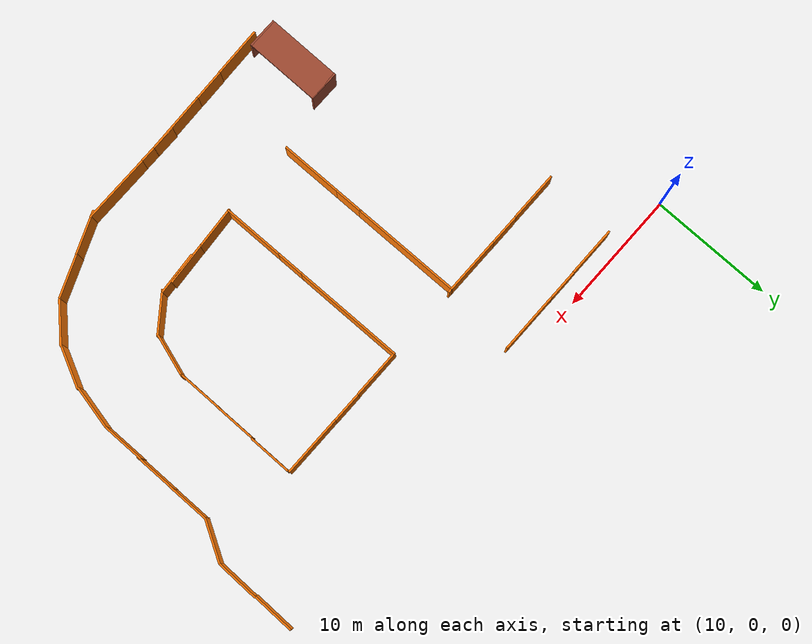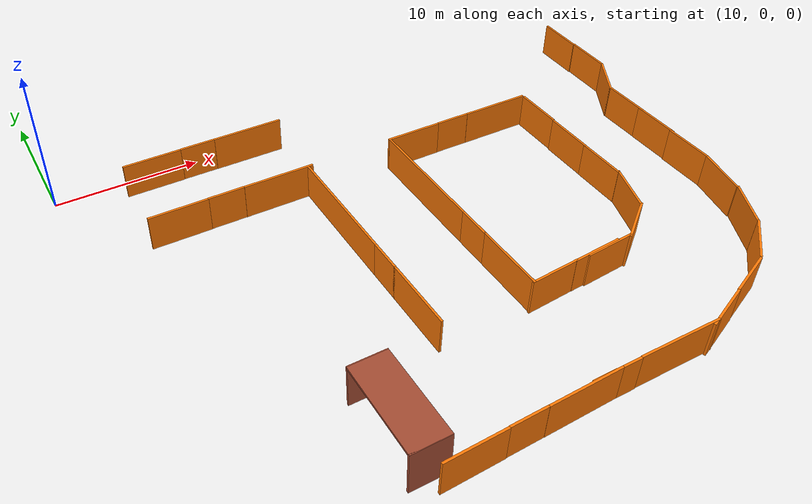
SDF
<sdf version="1.7">
 <world name="cimen_zemin_dunyasi">
  <model name="barier3_clone_clone_clone_clone_0_clone_clone">
   <link name="Wall_5">
    <pose>-1.25417 -2.31114 0 0 -0 0</pose>
    <inertial>
     <inertia><ixx>0</ixx><ixy>0</ixy><ixz>0</ixz><iyy>0</iyy><iyz>0</iyz><izz>0</izz></inertia>
     <mass>0</mass>
    </inertial>
    <visual name="Wall_5_Visual">
     <pose>0 0 1.25 0 -0 0</pose>
     <geometry><box><size>4.04839 0.15 2.5</size></box></geometry>
     <material>
      <script><uri>file://media/materials/scripts/gazebo.material</uri><name>Gazebo/Grey</name></script>
      <ambient>0.996078 0.47451 0.0196078 1</ambient>
      <shader type="pixel"/>
     </material>
     <meta><layer>0</layer></meta>
    </visual>
    <collision name="Wall_5_Collision">
     <pose>0 0 1.25 0 -0 0</pose>
     <geometry><box><size>4.04839 0.15 2.5</size></box></geometry>
     <surface>
      <friction>
       <ode><mu>1</mu><mu2>1</mu2><fdir1>0 0 0</fdir1><slip1>0</slip1><slip2>0</slip2></ode>
       <torsional>
        <coefficient>1</coefficient>
        <patch_radius>0</patch_radius>
        <surface_radius>0</surface_radius>
        <use_patch_radius>1</use_patch_radius>
        <ode><slip>0</slip></ode>
       </torsional>
      </friction>
      <bounce><restitution_coefficient>0</restitution_coefficient><threshold>1e+06</threshold></bounce>
      <contact>
       <collide_without_contact>0</collide_without_contact>
       <collide_without_contact_bitmask>1</collide_without_contact_bitmask>
       <collide_bitmask>1</collide_bitmask>
       <ode>
        <soft_cfm>0</soft_cfm>
        <soft_erp>0.2</soft_erp>
        <kp>1e+13</kp>
        <kd>1</kd>
        <max_vel>0.01</max_vel>
        <min_depth>0</min_depth>
       </ode>
       <bullet>
        <split_impulse>1</split_impulse>
        <split_impulse_penetration_threshold>-0.01</split_impulse_penetration_threshold>
        <soft_cfm>0</soft_cfm>
        <soft_erp>0.2</soft_erp>
        <kp>1e+13</kp>
        <kd>1</kd>
       </bullet>
      </contact>
     </surface>
    </collision>
   </link>
   <link name="Wall_7">
    <pose>2 -2.29057 0 0 -0 0</pose>
    <visual name="Wall_7_Visual">
     <pose>0 0 1.25 0 -0 0</pose>
     <geometry><box><size>2.5 0.15 2.5</size></box></geometry>
     <material>
      <script><uri>file://media/materials/scripts/gazebo.material</uri><name>Gazebo/Grey</name></script>
      <ambient>0.996078 0.47451 0.0196078 1</ambient>
      <shader type="pixel"/>
     </material>
     <meta><layer>0</layer></meta>
    </visual>
    <collision name="Wall_7_Collision">
     <pose>0 0 1.25 0 -0 0</pose>
     <geometry><box><size>2.5 0.15 2.5</size></box></geometry>
     <surface>
      <friction>
       <ode><mu>1</mu><mu2>1</mu2><fdir1>0 0 0</fdir1><slip1>0</slip1><slip2>0</slip2></ode>
       <torsional>
        <coefficient>1</coefficient>
        <patch_radius>0</patch_radius>
        <surface_radius>0</surface_radius>
        <use_patch_radius>1</use_patch_radius>
        <ode><slip>0</slip></ode>
       </torsional>
      </friction>
      <bounce><restitution_coefficient>0</restitution_coefficient><threshold>1e+06</threshold></bounce>
      <contact>
       <collide_without_contact>0</collide_without_contact>
       <collide_without_contact_bitmask>1</collide_without_contact_bitmask>
       <collide_bitmask>1</collide_bitmask>
       <ode>
        <soft_cfm>0</soft_cfm>
        <soft_erp>0.2</soft_erp>
        <kp>1e+13</kp>
        <kd>1</kd>
        <max_vel>0.01</max_vel>
        <min_depth>0</min_depth>
       </ode>
       <bullet>
        <split_impulse>1</split_impulse>
        <split_impulse_penetration_threshold>-0.01</split_impulse_penetration_threshold>
        <soft_cfm>0</soft_cfm>
        <soft_erp>0.2</soft_erp>
        <kp>1e+13</kp>
        <kd>1</kd>
       </bullet>
      </contact>
     </surface>
    </collision>
   </link>
   <link name="Wall_9">
    <pose>5.71906 -2.30051 0 0 -0 0</pose>
    <inertial>
     <inertia><ixx>0</ixx><ixy>0</ixy><ixz>0</ixz><iyy>0</iyy><iyz>0</iyz><izz>0</izz></inertia>
     <mass>0</mass>
    </inertial>
    <visual name="Wall_9_Visual">
     <pose>0 0 1.25 0 -0 0</pose>
     <geometry><box><size>4.97607 0.15 2.5</size></box></geometry>
     <material>
      <script><uri>file://media/materials/scripts/gazebo.material</uri><name>Gazebo/Grey</name></script>
      <ambient>0.996078 0.47451 0.0196078 1</ambient>
      <shader type="pixel"/>
     </material>
     <meta><layer>0</layer></meta>
    </visual>
    <collision name="Wall_9_Collision">
     <pose>0 0 1.25 0 -0 0</pose>
     <geometry><box><size>4.97607 0.15 2.5</size></box></geometry>
     <surface>
      <friction>
       <ode><mu>1</mu><mu2>1</mu2><fdir1>0 0 0</fdir1><slip1>0</slip1><slip2>0</slip2></ode>
       <torsional>
        <coefficient>1</coefficient>
        <patch_radius>0</patch_radius>
        <surface_radius>0</surface_radius>
        <use_patch_radius>1</use_patch_radius>
        <ode><slip>0</slip></ode>
       </torsional>
      </friction>
      <bounce><restitution_coefficient>0</restitution_coefficient><threshold>1e+06</threshold></bounce>
      <contact>
       <collide_without_contact>0</collide_without_contact>
       <collide_without_contact_bitmask>1</collide_without_contact_bitmask>
       <collide_bitmask>1</collide_bitmask>
       <ode>
        <soft_cfm>0</soft_cfm>
        <soft_erp>0.2</soft_erp>
        <kp>1e+13</kp>
        <kd>1</kd>
        <max_vel>0.01</max_vel>
        <min_depth>0</min_depth>
       </ode>
       <bullet>
        <split_impulse>1</split_impulse>
        <split_impulse_penetration_threshold>-0.01</split_impulse_penetration_threshold>
        <soft_cfm>0</soft_cfm>
        <soft_erp>0.2</soft_erp>
        <kp>1e+13</kp>
        <kd>1</kd>
       </bullet>
      </contact>
     </surface>
    </collision>
   </link>
   <static>1</static>
   <pose>17.8658 0.91508 0 0 -0 0</pose>
  </model>
  <model name="barier3_clone_clone_clone_clone_0_clone_clone_clone_clone_clone_clone">
   <link name="Wall_5">
    <pose>-1.25417 -2.31114 0 0 -0 0</pose>
    <inertial>
     <inertia><ixx>0</ixx><ixy>0</ixy><ixz>0</ixz><iyy>0</iyy><iyz>0</iyz><izz>0</izz></inertia>
     <mass>0</mass>
    </inertial>
    <visual name="Wall_5_Visual">
     <pose>0 0 1.25 0 -0 0</pose>
     <geometry><box><size>4.04839 0.15 2.5</size></box></geometry>
     <material>
      <script><uri>file://media/materials/scripts/gazebo.material</uri><name>Gazebo/Grey</name></script>
      <ambient>0.996078 0.47451 0.0196078 1</ambient>
      <shader type="pixel"/>
     </material>
     <meta><layer>0</layer></meta>
    </visual>
    <collision name="Wall_5_Collision">
     <pose>0 0 1.25 0 -0 0</pose>
     <geometry><box><size>4.04839 0.15 2.5</size></box></geometry>
     <surface>
      <friction>
       <ode><mu>1</mu><mu2>1</mu2><fdir1>0 0 0</fdir1><slip1>0</slip1><slip2>0</slip2></ode>
       <torsional>
        <coefficient>1</coefficient>
        <patch_radius>0</patch_radius>
        <surface_radius>0</surface_radius>
        <use_patch_radius>1</use_patch_radius>
        <ode><slip>0</slip></ode>
       </torsional>
      </friction>
      <bounce><restitution_coefficient>0</restitution_coefficient><threshold>1e+06</threshold></bounce>
      <contact>
       <collide_without_contact>0</collide_without_contact>
       <collide_without_contact_bitmask>1</collide_without_contact_bitmask>
       <collide_bitmask>1</collide_bitmask>
       <ode>
        <soft_cfm>0</soft_cfm>
        <soft_erp>0.2</soft_erp>
        <kp>1e+13</kp>
        <kd>1</kd>
        <max_vel>0.01</max_vel>
        <min_depth>0</min_depth>
       </ode>
       <bullet>
        <split_impulse>1</split_impulse>
        <split_impulse_penetration_threshold>-0.01</split_impulse_penetration_threshold>
        <soft_cfm>0</soft_cfm>
        <soft_erp>0.2</soft_erp>
        <kp>1e+13</kp>
        <kd>1</kd>
       </bullet>
      </contact>
     </surface>
    </collision>
   </link>
   <link name="Wall_7">
    <pose>2 -2.29057 0 0 -0 0</pose>
    <visual name="Wall_7_Visual">
     <pose>0 0 1.25 0 -0 0</pose>
     <geometry><box><size>2.5 0.15 2.5</size></box></geometry>
     <material>
      <script><uri>file://media/materials/scripts/gazebo.material</uri><name>Gazebo/Grey</name></script>
      <ambient>0.996078 0.47451 0.0196078 1</ambient>
      <shader type="pixel"/>
     </material>
     <meta><layer>0</layer></meta>
    </visual>
    <collision name="Wall_7_Collision">
     <pose>0 0 1.25 0 -0 0</pose>
     <geometry><box><size>2.5 0.15 2.5</size></box></geometry>
     <surface>
      <friction>
       <ode><mu>1</mu><mu2>1</mu2><fdir1>0 0 0</fdir1><slip1>0</slip1><slip2>0</slip2></ode>
       <torsional>
        <coefficient>1</coefficient>
        <patch_radius>0</patch_radius>
        <surface_radius>0</surface_radius>
        <use_patch_radius>1</use_patch_radius>
        <ode><slip>0</slip></ode>
       </torsional>
      </friction>
      <bounce><restitution_coefficient>0</restitution_coefficient><threshold>1e+06</threshold></bounce>
      <contact>
       <collide_without_contact>0</collide_without_contact>
       <collide_without_contact_bitmask>1</collide_without_contact_bitmask>
       <collide_bitmask>1</collide_bitmask>
       <ode>
        <soft_cfm>0</soft_cfm>
        <soft_erp>0.2</soft_erp>
        <kp>1e+13</kp>
        <kd>1</kd>
        <max_vel>0.01</max_vel>
        <min_depth>0</min_depth>
       </ode>
       <bullet>
        <split_impulse>1</split_impulse>
        <split_impulse_penetration_threshold>-0.01</split_impulse_penetration_threshold>
        <soft_cfm>0</soft_cfm>
        <soft_erp>0.2</soft_erp>
        <kp>1e+13</kp>
        <kd>1</kd>
       </bullet>
      </contact>
     </surface>
    </collision>
   </link>
   <link name="Wall_9">
    <pose>5.71906 -2.30051 0 0 -0 0</pose>
    <inertial>
     <inertia><ixx>0</ixx><ixy>0</ixy><ixz>0</ixz><iyy>0</iyy><iyz>0</iyz><izz>0</izz></inertia>
     <mass>0</mass>
    </inertial>
    <visual name="Wall_9_Visual">
     <pose>0 0 1.25 0 -0 0</pose>
     <geometry><box><size>4.97607 0.15 2.5</size></box></geometry>
     <material>
      <script><uri>file://media/materials/scripts/gazebo.material</uri><name>Gazebo/Grey</name></script>
      <ambient>0.996078 0.47451 0.0196078 1</ambient>
      <shader type="pixel"/>
     </material>
     <meta><layer>0</layer></meta>
    </visual>
    <collision name="Wall_9_Collision">
     <pose>0 0 1.25 0 -0 0</pose>
     <geometry><box><size>4.97607 0.15 2.5</size></box></geometry>
     <surface>
      <friction>
       <ode><mu>1</mu><mu2>1</mu2><fdir1>0 0 0</fdir1><slip1>0</slip1><slip2>0</slip2></ode>
       <torsional>
        <coefficient>1</coefficient>
        <patch_radius>0</patch_radius>
        <surface_radius>0</surface_radius>
        <use_patch_radius>1</use_patch_radius>
        <ode><slip>0</slip></ode>
       </torsional>
      </friction>
      <bounce><restitution_coefficient>0</restitution_coefficient><threshold>1e+06</threshold></bounce>
      <contact>
       <collide_without_contact>0</collide_without_contact>
       <collide_without_contact_bitmask>1</collide_without_contact_bitmask>
       <collide_bitmask>1</collide_bitmask>
       <ode>
        <soft_cfm>0</soft_cfm>
        <soft_erp>0.2</soft_erp>
        <kp>1e+13</kp>
        <kd>1</kd>
        <max_vel>0.01</max_vel>
        <min_depth>0</min_depth>
       </ode>
       <bullet>
        <split_impulse>1</split_impulse>
        <split_impulse_penetration_threshold>-0.01</split_impulse_penetration_threshold>
        <soft_cfm>0</soft_cfm>
        <soft_erp>0.2</soft_erp>
        <kp>1e+13</kp>
        <kd>1</kd>
       </bullet>
      </contact>
     </surface>
    </collision>
   </link>
   <static>1</static>
   <pose>23.7583 -28.5667 0 0 -0 0.030113</pose>
  </model>
  <model name="barier3_clone_clone_clone_clone_0_clone_clone_clone_clone_0_clone_clone">
   <link name="Wall_5">
    <pose>-0.876122 -2.31251 -0.000674 0 -0 0</pose>
    <inertial>
     <inertia><ixx>0</ixx><ixy>0</ixy><ixz>0</ixz><iyy>0</iyy><iyz>0</iyz><izz>0</izz></inertia>
     <mass>0</mass>
    </inertial>
    <visual name="Wall_5_Visual">
     <pose>0 0 1.25 0 -0 0</pose>
     <geometry><box><size>3.28339 0.15 2.5</size></box></geometry>
     <material>
      <script><uri>file://media/materials/scripts/gazebo.material</uri><name>Gazebo/Grey</name></script>
      <ambient>0.996078 0.47451 0.0196078 1</ambient>
      <shader type="pixel"/>
     </material>
     <meta><layer>0</layer></meta>
    </visual>
    <collision name="Wall_5_Collision">
     <pose>0 0 1.25 0 -0 0</pose>
     <geometry><box><size>3.28339 0.15 2.5</size></box></geometry>
     <surface>
      <friction>
       <ode><mu>1</mu><mu2>1</mu2><fdir1>0 0 0</fdir1><slip1>0</slip1><slip2>0</slip2></ode>
       <torsional>
        <coefficient>1</coefficient>
        <patch_radius>0</patch_radius>
        <surface_radius>0</surface_radius>
        <use_patch_radius>1</use_patch_radius>
        <ode><slip>0</slip></ode>
       </torsional>
      </friction>
      <bounce><restitution_coefficient>0</restitution_coefficient><threshold>1e+06</threshold></bounce>
      <contact>
       <collide_without_contact>0</collide_without_contact>
       <collide_without_contact_bitmask>1</collide_without_contact_bitmask>
       <collide_bitmask>1</collide_bitmask>
       <ode>
        <soft_cfm>0</soft_cfm>
        <soft_erp>0.2</soft_erp>
        <kp>1e+13</kp>
        <kd>1</kd>
        <max_vel>0.01</max_vel>
        <min_depth>0</min_depth>
       </ode>
       <bullet>
        <split_impulse>1</split_impulse>
        <split_impulse_penetration_threshold>-0.01</split_impulse_penetration_threshold>
        <soft_cfm>0</soft_cfm>
        <soft_erp>0.2</soft_erp>
        <kp>1e+13</kp>
        <kd>1</kd>
       </bullet>
      </contact>
     </surface>
    </collision>
   </link>
   <link name="Wall_9">
    <pose>3.5903 -2.29153 0.020971 0 -0 0</pose>
    <inertial>
     <inertia><ixx>0</ixx><ixy>0</ixy><ixz>0</ixz><iyy>0</iyy><iyz>0</iyz><izz>0</izz></inertia>
     <mass>0</mass>
    </inertial>
    <visual name="Wall_9_Visual">
     <pose>0 0 1.25 0 -0 0</pose>
     <geometry><box><size>5.65108 0.15 2.5</size></box></geometry>
     <material>
      <script><uri>file://media/materials/scripts/gazebo.material</uri><name>Gazebo/Grey</name></script>
      <ambient>0.996078 0.47451 0.0196078 1</ambient>
      <shader type="pixel"/>
     </material>
     <meta><layer>0</layer></meta>
    </visual>
    <collision name="Wall_9_Collision">
     <pose>0 0 1.25 0 -0 0</pose>
     <geometry><box><size>5.65108 0.15 2.5</size></box></geometry>
     <surface>
      <friction>
       <ode><mu>1</mu><mu2>1</mu2><fdir1>0 0 0</fdir1><slip1>0</slip1><slip2>0</slip2></ode>
       <torsional>
        <coefficient>1</coefficient>
        <patch_radius>0</patch_radius>
        <surface_radius>0</surface_radius>
        <use_patch_radius>1</use_patch_radius>
        <ode><slip>0</slip></ode>
       </torsional>
      </friction>
      <bounce><restitution_coefficient>0</restitution_coefficient><threshold>1e+06</threshold></bounce>
      <contact>
       <collide_without_contact>0</collide_without_contact>
       <collide_without_contact_bitmask>1</collide_without_contact_bitmask>
       <collide_bitmask>1</collide_bitmask>
       <ode>
        <soft_cfm>0</soft_cfm>
        <soft_erp>0.2</soft_erp>
        <kp>1e+13</kp>
        <kd>1</kd>
        <max_vel>0.01</max_vel>
        <min_depth>0</min_depth>
       </ode>
       <bullet>
        <split_impulse>1</split_impulse>
        <split_impulse_penetration_threshold>-0.01</split_impulse_penetration_threshold>
        <soft_cfm>0</soft_cfm>
        <soft_erp>0.2</soft_erp>
        <kp>1e+13</kp>
        <kd>1</kd>
       </bullet>
      </contact>
     </surface>
    </collision>
   </link>
   <static>1</static>
   <pose>32.5384 -28.3073 0 0 -0 0</pose>
  </model>
  <model name="barrier2_0">
   <pose>41.1833 -28.8913 0 0 -0 0.378391</pose>
   <link name="Wall_3">
    <collision name="Wall_3_Collision">
     <geometry><box><size>3.5 0.15 2.5</size></box></geometry>
     <pose>0 0 1.25 0 -0 0</pose>
    </collision>
    <visual name="Wall_3_Visual">
     <pose>0 0 1.25 0 -0 0</pose>
     <geometry><box><size>3.5 0.15 2.5</size></box></geometry>
     <material>
      <script><uri>file://media/materials/scripts/gazebo.material</uri><name>Gazebo/Grey</name></script>
      <ambient>0.996078 0.47451 0.0196078 1</ambient>
     </material>
     <meta><layer>0</layer></meta>
    </visual>
    <pose>-1.55327 -0.720218 0 0 -0 0</pose>
   </link>
   <static>1</static>
  </model>
  <model name="barrier2_0_clone">
   <pose>44.373 -27.5976 0 0 -0 0.378391</pose>
   <link name="Wall_3">
    <collision name="Wall_3_Collision">
     <geometry><box><size>3.5 0.15 2.5</size></box></geometry>
     <pose>0 0 1.25 0 -0 0</pose>
    </collision>
    <visual name="Wall_3_Visual">
     <pose>0 0 1.25 0 -0 0</pose>
     <geometry><box><size>3.5 0.15 2.5</size></box></geometry>
     <material>
      <script><uri>file://media/materials/scripts/gazebo.material</uri><name>Gazebo/Grey</name></script>
      <ambient>0.996078 0.47451 0.0196078 1</ambient>
     </material>
     <meta><layer>0</layer></meta>
    </visual>
    <pose>-1.55327 -0.720218 0 0 -0 0</pose>
   </link>
   <static>1</static>
  </model>
  <model name="barrier2_0_clone_clone">
   <pose>46.6916 -25.3254 0 0 -0 0.779976</pose>
   <link name="Wall_3">
    <collision name="Wall_3_Collision">
     <geometry><box><size>3.5 0.15 2.5</size></box></geometry>
     <pose>0 0 1.25 0 -0 0</pose>
    </collision>
    <visual name="Wall_3_Visual">
     <pose>0 0 1.25 0 -0 0</pose>
     <geometry><box><size>3.5 0.15 2.5</size></box></geometry>
     <material>
      <script><uri>file://media/materials/scripts/gazebo.material</uri><name>Gazebo/Grey</name></script>
      <ambient>0.996078 0.47451 0.0196078 1</ambient>
     </material>
     <meta><layer>0</layer></meta>
    </visual>
    <pose>-1.55327 -0.720218 0 0 -0 0</pose>
   </link>
   <static>1</static>
  </model>
  <model name="barrier2_0_clone_clone_0">
   <pose>48.0691 -22.5134 0 0 -0 1.10597</pose>
   <link name="Wall_3">
    <collision name="Wall_3_Collision">
     <geometry><box><size>3.5 0.15 2.5</size></box></geometry>
     <pose>0 0 1.25 0 -0 0</pose>
    </collision>
    <visual name="Wall_3_Visual">
     <pose>0 0 1.25 0 -0 0</pose>
     <geometry><box><size>3.5 0.15 2.5</size></box></geometry>
     <material>
      <script><uri>file://media/materials/scripts/gazebo.material</uri><name>Gazebo/Grey</name></script>
      <ambient>0.996078 0.47451 0.0196078 1</ambient>
     </material>
     <meta><layer>0</layer></meta>
    </visual>
    <pose>-1.55327 -0.720218 0 0 -0 0</pose>
   </link>
   <static>1</static>
  </model>
  <model name="barrier2_0_clone_clone_0_clone">
   <pose>48.7188 -19.3432 0 0 -0 1.3497</pose>
   <link name="Wall_3">
    <collision name="Wall_3_Collision">
     <geometry><box><size>3.5 0.15 2.5</size></box></geometry>
     <pose>0 0 1.25 0 -0 0</pose>
    </collision>
    <visual name="Wall_3_Visual">
     <pose>0 0 1.25 0 -0 0</pose>
     <geometry><box><size>3.5 0.15 2.5</size></box></geometry>
     <material>
      <script><uri>file://media/materials/scripts/gazebo.material</uri><name>Gazebo/Grey</name></script>
      <ambient>0.996078 0.47451 0.0196078 1</ambient>
     </material>
     <meta><layer>0</layer></meta>
    </visual>
    <pose>-1.55327 -0.720218 0 0 -0 0</pose>
   </link>
   <static>1</static>
  </model>
  <model name="barrier2_0_clone_clone_0_clone_clone">
   <pose>48.7558 -16.0392 0 0 -0 1.56919</pose>
   <link name="Wall_3">
    <collision name="Wall_3_Collision">
     <geometry><box><size>3.5 0.15 2.5</size></box></geometry>
     <pose>0 0 1.25 0 -0 0</pose>
    </collision>
    <visual name="Wall_3_Visual">
     <pose>0 0 1.25 0 -0 0</pose>
     <geometry><box><size>3.5 0.15 2.5</size></box></geometry>
     <material>
      <script><uri>file://media/materials/scripts/gazebo.material</uri><name>Gazebo/Grey</name></script>
      <ambient>0.996078 0.47451 0.0196078 1</ambient>
     </material>
     <meta><layer>0</layer></meta>
    </visual>
    <pose>-1.55327 -0.720218 0 0 -0 0</pose>
   </link>
   <static>1</static>
  </model>
  <model name="barrier2_1">
   <pose>50.5532 -6.38921 0 0 -0 1.04356</pose>
   <link name="Wall_3">
    <collision name="Wall_3_Collision">
     <geometry><box><size>3.5 0.15 2.5</size></box></geometry>
     <pose>0 0 1.25 0 -0 0</pose>
    </collision>
    <visual name="Wall_3_Visual">
     <pose>0 0 1.25 0 -0 0</pose>
     <geometry><box><size>3.5 0.15 2.5</size></box></geometry>
     <material>
      <script><uri>file://media/materials/scripts/gazebo.material</uri><name>Gazebo/Grey</name></script>
      <ambient>0.996078 0.47451 0.0196078 1</ambient>
     </material>
     <meta><layer>0</layer></meta>
    </visual>
    <pose>-1.55327 -0.720218 0 0 -0 0</pose>
   </link>
   <static>1</static>
  </model>
  <model name="barrier2_1_clone">
   <pose>50.6246 -3.26853 0 0 -0 1.54878</pose>
   <link name="Wall_3">
    <collision name="Wall_3_Collision">
     <geometry><box><size>3.5 0.15 2.5</size></box></geometry>
     <pose>0 0 1.25 0 -0 0</pose>
    </collision>
    <visual name="Wall_3_Visual">
     <pose>0 0 1.25 0 -0 0</pose>
     <geometry><box><size>3.5 0.15 2.5</size></box></geometry>
     <material>
      <script><uri>file://media/materials/scripts/gazebo.material</uri><name>Gazebo/Grey</name></script>
      <ambient>0.996078 0.47451 0.0196078 1</ambient>
     </material>
     <meta><layer>0</layer></meta>
    </visual>
    <pose>-1.55327 -0.720218 0 0 -0 0</pose>
   </link>
   <static>1</static>
  </model>
  <model name="barrier2_1_clone_clone">
   <pose>50.6415 0.131946 0 0 -0 1.54878</pose>
   <link name="Wall_3">
    <collision name="Wall_3_Collision">
     <geometry><box><size>3.5 0.15 2.5</size></box></geometry>
     <pose>0 0 1.25 0 -0 0</pose>
    </collision>
    <visual name="Wall_3_Visual">
     <pose>0 0 1.25 0 -0 0</pose>
     <geometry><box><size>3.5 0.15 2.5</size></box></geometry>
     <material>
      <script><uri>file://media/materials/scripts/gazebo.material</uri><name>Gazebo/Grey</name></script>
      <ambient>0.996078 0.47451 0.0196078 1</ambient>
     </material>
     <meta><layer>0</layer></meta>
    </visual>
    <pose>-1.55327 -0.720218 0 0 -0 0</pose>
   </link>
   <static>1</static>
  </model>
  <model name="barier3_clone_clone_1">
   <pose>27.7661 -15.2633 0 0 0 -1.56341</pose>
   <link name="Wall_5">
    <collision name="Wall_5_Collision">
     <geometry><box><size>9 0.15 2.5</size></box></geometry>
     <pose>0 0 1.25 0 -0 0</pose>
    </collision>
    <visual name="Wall_5_Visual">
     <pose>0 0 1.25 0 -0 0</pose>
     <geometry><box><size>9 0.15 2.5</size></box></geometry>
     <material>
      <script><uri>file://media/materials/scripts/gazebo.material</uri><name>Gazebo/Grey</name></script>
      <ambient>0.996078 0.47451 0.0196078 1</ambient>
     </material>
     <meta><layer>0</layer></meta>
    </visual>
    <pose>-3.6 -2.29057 0 0 -0 0</pose>
   </link>
   <link name="Wall_7">
    <collision name="Wall_7_Collision">
     <geometry><box><size>2.5 0.15 2.5</size></box></geometry>
     <pose>0 0 1.25 0 -0 0</pose>
    </collision>
    <visual name="Wall_7_Visual">
     <pose>0 0 1.25 0 -0 0</pose>
     <geometry><box><size>2.5 0.15 2.5</size></box></geometry>
     <material>
      <script><uri>file://media/materials/scripts/gazebo.material</uri><name>Gazebo/Grey</name></script>
      <ambient>0.996078 0.47451 0.0196078 1</ambient>
     </material>
     <meta><layer>0</layer></meta>
    </visual>
    <pose>2 -2.29057 0 0 -0 0</pose>
   </link>
   <link name="Wall_9">
    <collision name="Wall_9_Collision">
     <geometry><box><size>5 0.15 2.5</size></box></geometry>
     <pose>0 0 1.25 0 -0 0</pose>
    </collision>
    <visual name="Wall_9_Visual">
     <pose>0 0 1.25 0 -0 0</pose>
     <geometry><box><size>5 0.15 2.5</size></box></geometry>
     <material>
      <script><uri>file://media/materials/scripts/gazebo.material</uri><name>Gazebo/Grey</name></script>
      <ambient>0.996078 0.47451 0.0196078 1</ambient>
     </material>
     <meta><layer>0</layer></meta>
    </visual>
    <pose>5.6 -2.29057 0 0 -0 0</pose>
   </link>
   <static>1</static>
  </model>
  <model name="barier3_clone_clone_1_clone">
   <pose>34.088 -15.2862 0 0 0 -1.56341</pose>
   <link name="Wall_5">
    <collision name="Wall_5_Collision">
     <geometry><box><size>9 0.15 2.5</size></box></geometry>
     <pose>0 0 1.25 0 -0 0</pose>
    </collision>
    <visual name="Wall_5_Visual">
     <pose>0 0 1.25 0 -0 0</pose>
     <geometry><box><size>9 0.15 2.5</size></box></geometry>
     <material>
      <script><uri>file://media/materials/scripts/gazebo.material</uri><name>Gazebo/Grey</name></script>
      <ambient>0.996078 0.47451 0.0196078 1</ambient>
     </material>
     <meta><layer>0</layer></meta>
    </visual>
    <pose>-3.6 -2.29057 0 0 -0 0</pose>
   </link>
   <link name="Wall_7">
    <collision name="Wall_7_Collision">
     <geometry><box><size>2.5 0.15 2.5</size></box></geometry>
     <pose>0 0 1.25 0 -0 0</pose>
    </collision>
    <visual name="Wall_7_Visual">
     <pose>0 0 1.25 0 -0 0</pose>
     <geometry><box><size>2.5 0.15 2.5</size></box></geometry>
     <material>
      <script><uri>file://media/materials/scripts/gazebo.material</uri><name>Gazebo/Grey</name></script>
      <ambient>0.996078 0.47451 0.0196078 1</ambient>
     </material>
     <meta><layer>0</layer></meta>
    </visual>
    <pose>2 -2.29057 0 0 -0 0</pose>
   </link>
   <link name="Wall_9">
    <collision name="Wall_9_Collision">
     <geometry><box><size>5 0.15 2.5</size></box></geometry>
     <pose>0 0 1.25 0 -0 0</pose>
    </collision>
    <visual name="Wall_9_Visual">
     <pose>0 0 1.25 0 -0 0</pose>
     <geometry><box><size>5 0.15 2.5</size></box></geometry>
     <material>
      <script><uri>file://media/materials/scripts/gazebo.material</uri><name>Gazebo/Grey</name></script>
      <ambient>0.996078 0.47451 0.0196078 1</ambient>
     </material>
     <meta><layer>0</layer></meta>
    </visual>
    <pose>5.6 -2.29057 0 0 -0 0</pose>
   </link>
   <static>1</static>
  </model>
  <model name="barier3_clone_clone_clone_clone_0_clone_clone_clone_clone_1">
   <link name="Wall_5">
    <pose>-1.25417 -2.31114 0 0 -0 0</pose>
    <inertial>
     <inertia><ixx>0</ixx><ixy>0</ixy><ixz>0</ixz><iyy>0</iyy><iyz>0</iyz><izz>0</izz></inertia>
     <mass>0</mass>
    </inertial>
    <visual name="Wall_5_Visual">
     <pose>0 0 1.25 0 -0 0</pose>
     <geometry><box><size>4.04839 0.15 2.5</size></box></geometry>
     <material>
      <script><uri>file://media/materials/scripts/gazebo.material</uri><name>Gazebo/Grey</name></script>
      <ambient>0.996078 0.47451 0.0196078 1</ambient>
      <shader type="pixel"/>
     </material>
     <meta><layer>0</layer></meta>
    </visual>
    <collision name="Wall_5_Collision">
     <pose>0 0 1.25 0 -0 0</pose>
     <geometry><box><size>4.04839 0.15 2.5</size></box></geometry>
     <surface>
      <friction>
       <ode><mu>1</mu><mu2>1</mu2><fdir1>0 0 0</fdir1><slip1>0</slip1><slip2>0</slip2></ode>
       <torsional>
        <coefficient>1</coefficient>
        <patch_radius>0</patch_radius>
        <surface_radius>0</surface_radius>
        <use_patch_radius>1</use_patch_radius>
        <ode><slip>0</slip></ode>
       </torsional>
      </friction>
      <bounce><restitution_coefficient>0</restitution_coefficient><threshold>1e+06</threshold></bounce>
      <contact>
       <collide_without_contact>0</collide_without_contact>
       <collide_without_contact_bitmask>1</collide_without_contact_bitmask>
       <collide_bitmask>1</collide_bitmask>
       <ode>
        <soft_cfm>0</soft_cfm>
        <soft_erp>0.2</soft_erp>
        <kp>1e+13</kp>
        <kd>1</kd>
        <max_vel>0.01</max_vel>
        <min_depth>0</min_depth>
       </ode>
       <bullet>
        <split_impulse>1</split_impulse>
        <split_impulse_penetration_threshold>-0.01</split_impulse_penetration_threshold>
        <soft_cfm>0</soft_cfm>
        <soft_erp>0.2</soft_erp>
        <kp>1e+13</kp>
        <kd>1</kd>
       </bullet>
      </contact>
     </surface>
    </collision>
   </link>
   <link name="Wall_7">
    <pose>2 -2.29057 0 0 -0 0</pose>
    <visual name="Wall_7_Visual">
     <pose>0 0 1.25 0 -0 0</pose>
     <geometry><box><size>2.5 0.15 2.5</size></box></geometry>
     <material>
      <script><uri>file://media/materials/scripts/gazebo.material</uri><name>Gazebo/Grey</name></script>
      <ambient>0.996078 0.47451 0.0196078 1</ambient>
      <shader type="pixel"/>
     </material>
     <meta><layer>0</layer></meta>
    </visual>
    <collision name="Wall_7_Collision">
     <pose>0 0 1.25 0 -0 0</pose>
     <geometry><box><size>2.5 0.15 2.5</size></box></geometry>
     <surface>
      <friction>
       <ode><mu>1</mu><mu2>1</mu2><fdir1>0 0 0</fdir1><slip1>0</slip1><slip2>0</slip2></ode>
       <torsional>
        <coefficient>1</coefficient>
        <patch_radius>0</patch_radius>
        <surface_radius>0</surface_radius>
        <use_patch_radius>1</use_patch_radius>
        <ode><slip>0</slip></ode>
       </torsional>
      </friction>
      <bounce><restitution_coefficient>0</restitution_coefficient><threshold>1e+06</threshold></bounce>
      <contact>
       <collide_without_contact>0</collide_without_contact>
       <collide_without_contact_bitmask>1</collide_without_contact_bitmask>
       <collide_bitmask>1</collide_bitmask>
       <ode>
        <soft_cfm>0</soft_cfm>
        <soft_erp>0.2</soft_erp>
        <kp>1e+13</kp>
        <kd>1</kd>
        <max_vel>0.01</max_vel>
        <min_depth>0</min_depth>
       </ode>
       <bullet>
        <split_impulse>1</split_impulse>
        <split_impulse_penetration_threshold>-0.01</split_impulse_penetration_threshold>
        <soft_cfm>0</soft_cfm>
        <soft_erp>0.2</soft_erp>
        <kp>1e+13</kp>
        <kd>1</kd>
       </bullet>
      </contact>
     </surface>
    </collision>
   </link>
   <link name="Wall_9">
    <pose>5.71906 -2.30051 0 0 -0 0</pose>
    <inertial>
     <inertia><ixx>0</ixx><ixy>0</ixy><ixz>0</ixz><iyy>0</iyy><iyz>0</iyz><izz>0</izz></inertia>
     <mass>0</mass>
    </inertial>
    <visual name="Wall_9_Visual">
     <pose>0 0 1.25 0 -0 0</pose>
     <geometry><box><size>4.97607 0.15 2.5</size></box></geometry>
     <material>
      <script><uri>file://media/materials/scripts/gazebo.material</uri><name>Gazebo/Grey</name></script>
      <ambient>0.996078 0.47451 0.0196078 1</ambient>
      <shader type="pixel"/>
     </material>
     <meta><layer>0</layer></meta>
    </visual>
    <collision name="Wall_9_Collision">
     <pose>0 0 1.25 0 -0 0</pose>
     <geometry><box><size>4.97607 0.15 2.5</size></box></geometry>
     <surface>
      <friction>
       <ode><mu>1</mu><mu2>1</mu2><fdir1>0 0 0</fdir1><slip1>0</slip1><slip2>0</slip2></ode>
       <torsional>
        <coefficient>1</coefficient>
        <patch_radius>0</patch_radius>
        <surface_radius>0</surface_radius>
        <use_patch_radius>1</use_patch_radius>
        <ode><slip>0</slip></ode>
       </torsional>
      </friction>
      <bounce><restitution_coefficient>0</restitution_coefficient><threshold>1e+06</threshold></bounce>
      <contact>
       <collide_without_contact>0</collide_without_contact>
       <collide_without_contact_bitmask>1</collide_without_contact_bitmask>
       <collide_bitmask>1</collide_bitmask>
       <ode>
        <soft_cfm>0</soft_cfm>
        <soft_erp>0.2</soft_erp>
        <kp>1e+13</kp>
        <kd>1</kd>
        <max_vel>0.01</max_vel>
        <min_depth>0</min_depth>
       </ode>
       <bullet>
        <split_impulse>1</split_impulse>
        <split_impulse_penetration_threshold>-0.01</split_impulse_penetration_threshold>
        <soft_cfm>0</soft_cfm>
        <soft_erp>0.2</soft_erp>
        <kp>1e+13</kp>
        <kd>1</kd>
       </bullet>
      </contact>
     </surface>
    </collision>
   </link>
   <static>1</static>
   <pose>34.9291 -4.94299 0 0 -0 0</pose>
  </model>
  <model name="barrier2_0_clone_clone_0_clone_clone_clone">
   <pose>42.4211 -7.56395 0 0 -0 1.56919</pose>
   <link name="Wall_3">
    <collision name="Wall_3_Collision">
     <geometry><box><size>3.5 0.15 2.5</size></box></geometry>
     <pose>0 0 1.25 0 -0 0</pose>
    </collision>
    <visual name="Wall_3_Visual">
     <pose>0 0 1.25 0 -0 0</pose>
     <geometry><box><size>3.5 0.15 2.5</size></box></geometry>
     <material>
      <script><uri>file://media/materials/scripts/gazebo.material</uri><name>Gazebo/Grey</name></script>
      <ambient>0.996078 0.47451 0.0196078 1</ambient>
     </material>
     <meta><layer>0</layer></meta>
    </visual>
    <pose>-1.55327 -0.720218 0 0 -0 0</pose>
   </link>
   <static>1</static>
  </model>
  <model name="barrier2_0_clone_clone_0_clone_clone_clone_clone">
   <pose>42.3577 -11.112 0 0 -0 1.56919</pose>
   <link name="Wall_3">
    <collision name="Wall_3_Collision">
     <geometry><box><size>3.5 0.15 2.5</size></box></geometry>
     <pose>0 0 1.25 0 -0 0</pose>
    </collision>
    <visual name="Wall_3_Visual">
     <pose>0 0 1.25 0 -0 0</pose>
     <geometry><box><size>3.5 0.15 2.5</size></box></geometry>
     <material>
      <script><uri>file://media/materials/scripts/gazebo.material</uri><name>Gazebo/Grey</name></script>
      <ambient>0.996078 0.47451 0.0196078 1</ambient>
     </material>
     <meta><layer>0</layer></meta>
    </visual>
    <pose>-1.55327 -0.720218 0 0 -0 0</pose>
   </link>
   <static>1</static>
  </model>
  <model name="barrier2_0_clone_clone_0_clone_clone_clone_clone_clone">
   <pose>42.3379 -14.5116 0 0 -0 1.56919</pose>
   <link name="Wall_3">
    <collision name="Wall_3_Collision">
     <geometry><box><size>3.5 0.15 2.5</size></box></geometry>
     <pose>0 0 1.25 0 -0 0</pose>
    </collision>
    <visual name="Wall_3_Visual">
     <pose>0 0 1.25 0 -0 0</pose>
     <geometry><box><size>3.5 0.15 2.5</size></box></geometry>
     <material>
      <script><uri>file://media/materials/scripts/gazebo.material</uri><name>Gazebo/Grey</name></script>
      <ambient>0.996078 0.47451 0.0196078 1</ambient>
     </material>
     <meta><layer>0</layer></meta>
    </visual>
    <pose>-1.55327 -0.720218 0 0 -0 0</pose>
   </link>
   <static>1</static>
  </model>
  <model name="barrier2_0_clone_clone_0_clone_clone_clone_clone_clone_clone">
   <pose>42.3858 -17.6249 0 0 -0 1.25875</pose>
   <link name="Wall_3">
    <collision name="Wall_3_Collision">
     <geometry><box><size>3.5 0.15 2.5</size></box></geometry>
     <pose>0 0 1.25 0 -0 0</pose>
    </collision>
    <visual name="Wall_3_Visual">
     <pose>0 0 1.25 0 -0 0</pose>
     <geometry><box><size>3.5 0.15 2.5</size></box></geometry>
     <material>
      <script><uri>file://media/materials/scripts/gazebo.material</uri><name>Gazebo/Grey</name></script>
      <ambient>0.996078 0.47451 0.0196078 1</ambient>
     </material>
     <meta><layer>0</layer></meta>
    </visual>
    <pose>-1.55327 -0.720218 0 0 -0 0</pose>
   </link>
   <static>1</static>
  </model>
  <model name="barrier2_0_clone_clone_0_clone_clone_clone_clone_clone_clone_clone">
   <pose>41.5821 -20.4836 0 0 -0 0.639315</pose>
   <link name="Wall_3">
    <collision name="Wall_3_Collision">
     <geometry><box><size>3.5 0.15 2.5</size></box></geometry>
     <pose>0 0 1.25 0 -0 0</pose>
    </collision>
    <visual name="Wall_3_Visual">
     <pose>0 0 1.25 0 -0 0</pose>
     <geometry><box><size>3.5 0.15 2.5</size></box></geometry>
     <material>
      <script><uri>file://media/materials/scripts/gazebo.material</uri><name>Gazebo/Grey</name></script>
      <ambient>0.996078 0.47451 0.0196078 1</ambient>
     </material>
     <meta><layer>0</layer></meta>
    </visual>
    <pose>-1.55327 -0.720218 0 0 -0 0</pose>
   </link>
   <static>1</static>
  </model>
  <model name="barrier2_0_clone_clone_0_clone_clone_clone_clone_clone_clone_clone_clone">
   <pose>34.9713 -22.3918 0 0 -0 0.074264</pose>
   <link name="Wall_3">
    <collision name="Wall_3_Collision">
     <geometry><box><size>3.5 0.15 2.5</size></box></geometry>
     <pose>0 0 1.25 0 -0 0</pose>
    </collision>
    <visual name="Wall_3_Visual">
     <pose>0 0 1.25 0 -0 0</pose>
     <geometry><box><size>3.5 0.15 2.5</size></box></geometry>
     <material>
      <script><uri>file://media/materials/scripts/gazebo.material</uri><name>Gazebo/Grey</name></script>
      <ambient>0.996078 0.47451 0.0196078 1</ambient>
     </material>
     <meta><layer>0</layer></meta>
    </visual>
    <pose>-1.55327 -0.720218 0 0 -0 0</pose>
   </link>
   <static>1</static>
  </model>
  <model name="barrier2_0_clone_clone_0_clone_clone_clone_clone_clone_clone_clone_clone_clone">
   <pose>38.3002 -22.1559 0 0 -0 0.074264</pose>
   <link name="Wall_3">
    <collision name="Wall_3_Collision">
     <geometry><box><size>3.5 0.15 2.5</size></box></geometry>
     <pose>0 0 1.25 0 -0 0</pose>
    </collision>
    <visual name="Wall_3_Visual">
     <pose>0 0 1.25 0 -0 0</pose>
     <geometry><box><size>3.5 0.15 2.5</size></box></geometry>
     <material>
      <script><uri>file://media/materials/scripts/gazebo.material</uri><name>Gazebo/Grey</name></script>
      <ambient>0.996078 0.47451 0.0196078 1</ambient>
     </material>
     <meta><layer>0</layer></meta>
    </visual>
    <pose>-1.55327 -0.720218 0 0 -0 0</pose>
   </link>
   <static>1</static>
  </model>
  <model name="barrier2_0_clone_clone_0_clone_clone_clone_clone_clone_clone_clone_clone_clone_clone">
   <pose>39.2836 -22.1834 0 0 -0 0.074264</pose>
   <link name="Wall_3">
    <collision name="Wall_3_Collision">
     <geometry><box><size>3.5 0.15 2.5</size></box></geometry>
     <pose>0 0 1.25 0 -0 0</pose>
    </collision>
    <visual name="Wall_3_Visual">
     <pose>0 0 1.25 0 -0 0</pose>
     <geometry><box><size>3.5 0.15 2.5</size></box></geometry>
     <material>
      <script><uri>file://media/materials/scripts/gazebo.material</uri><name>Gazebo/Grey</name></script>
      <ambient>0.996078 0.47451 0.0196078 1</ambient>
     </material>
     <meta><layer>0</layer></meta>
    </visual>
    <pose>-1.55327 -0.720218 0 0 -0 0</pose>
   </link>
   <static>1</static>
  </model>
  <model name="barier3_clone_clone_clone_clone_0_clone_clone_clone_clone_2_clone">
   <link name="Wall_5">
    <pose>-1.25417 -2.31114 0 0 -0 0</pose>
    <inertial>
     <inertia><ixx>0</ixx><ixy>0</ixy><ixz>0</ixz><iyy>0</iyy><iyz>0</iyz><izz>0</izz></inertia>
     <mass>0</mass>
    </inertial>
    <visual name="Wall_5_Visual">
     <pose>0 0 1.25 0 -0 0</pose>
     <geometry><box><size>4.04839 0.15 2.5</size></box></geometry>
     <material>
      <script><uri>file://media/materials/scripts/gazebo.material</uri><name>Gazebo/Grey</name></script>
      <ambient>0.996078 0.47451 0.0196078 1</ambient>
      <shader type="pixel"/>
     </material>
     <meta><layer>0</layer></meta>
    </visual>
    <collision name="Wall_5_Collision">
     <pose>0 0 1.25 0 -0 0</pose>
     <geometry><box><size>4.04839 0.15 2.5</size></box></geometry>
     <surface>
      <friction>
       <ode><mu>1</mu><mu2>1</mu2><fdir1>0 0 0</fdir1><slip1>0</slip1><slip2>0</slip2></ode>
       <torsional>
        <coefficient>1</coefficient>
        <patch_radius>0</patch_radius>
        <surface_radius>0</surface_radius>
        <use_patch_radius>1</use_patch_radius>
        <ode><slip>0</slip></ode>
       </torsional>
      </friction>
      <bounce><restitution_coefficient>0</restitution_coefficient><threshold>1e+06</threshold></bounce>
      <contact>
       <collide_without_contact>0</collide_without_contact>
       <collide_without_contact_bitmask>1</collide_without_contact_bitmask>
       <collide_bitmask>1</collide_bitmask>
       <ode>
        <soft_cfm>0</soft_cfm>
        <soft_erp>0.2</soft_erp>
        <kp>1e+13</kp>
        <kd>1</kd>
        <max_vel>0.01</max_vel>
        <min_depth>0</min_depth>
       </ode>
       <bullet>
        <split_impulse>1</split_impulse>
        <split_impulse_penetration_threshold>-0.01</split_impulse_penetration_threshold>
        <soft_cfm>0</soft_cfm>
        <soft_erp>0.2</soft_erp>
        <kp>1e+13</kp>
        <kd>1</kd>
       </bullet>
      </contact>
     </surface>
    </collision>
   </link>
   <link name="Wall_7">
    <pose>2 -2.29057 0 0 -0 0</pose>
    <visual name="Wall_7_Visual">
     <pose>0 0 1.25 0 -0 0</pose>
     <geometry><box><size>2.5 0.15 2.5</size></box></geometry>
     <material>
      <script><uri>file://media/materials/scripts/gazebo.material</uri><name>Gazebo/Grey</name></script>
      <ambient>0.996078 0.47451 0.0196078 1</ambient>
      <shader type="pixel"/>
     </material>
     <meta><layer>0</layer></meta>
    </visual>
    <collision name="Wall_7_Collision">
     <pose>0 0 1.25 0 -0 0</pose>
     <geometry><box><size>2.5 0.15 2.5</size></box></geometry>
     <surface>
      <friction>
       <ode><mu>1</mu><mu2>1</mu2><fdir1>0 0 0</fdir1><slip1>0</slip1><slip2>0</slip2></ode>
       <torsional>
        <coefficient>1</coefficient>
        <patch_radius>0</patch_radius>
        <surface_radius>0</surface_radius>
        <use_patch_radius>1</use_patch_radius>
        <ode><slip>0</slip></ode>
       </torsional>
      </friction>
      <bounce><restitution_coefficient>0</restitution_coefficient><threshold>1e+06</threshold></bounce>
      <contact>
       <collide_without_contact>0</collide_without_contact>
       <collide_without_contact_bitmask>1</collide_without_contact_bitmask>
       <collide_bitmask>1</collide_bitmask>
       <ode>
        <soft_cfm>0</soft_cfm>
        <soft_erp>0.2</soft_erp>
        <kp>1e+13</kp>
        <kd>1</kd>
        <max_vel>0.01</max_vel>
        <min_depth>0</min_depth>
       </ode>
       <bullet>
        <split_impulse>1</split_impulse>
        <split_impulse_penetration_threshold>-0.01</split_impulse_penetration_threshold>
        <soft_cfm>0</soft_cfm>
        <soft_erp>0.2</soft_erp>
        <kp>1e+13</kp>
        <kd>1</kd>
       </bullet>
      </contact>
     </surface>
    </collision>
   </link>
   <link name="Wall_9">
    <pose>5.71906 -2.30051 0 0 -0 0</pose>
    <inertial>
     <inertia><ixx>0</ixx><ixy>0</ixy><ixz>0</ixz><iyy>0</iyy><iyz>0</iyz><izz>0</izz></inertia>
     <mass>0</mass>
    </inertial>
    <visual name="Wall_9_Visual">
     <pose>0 0 1.25 0 -0 0</pose>
     <geometry><box><size>4.97607 0.15 2.5</size></box></geometry>
     <material>
      <script><uri>file://media/materials/scripts/gazebo.material</uri><name>Gazebo/Grey</name></script>
      <ambient>0.996078 0.47451 0.0196078 1</ambient>
      <shader type="pixel"/>
     </material>
     <meta><layer>0</layer></meta>
    </visual>
    <collision name="Wall_9_Collision">
     <pose>0 0 1.25 0 -0 0</pose>
     <geometry><box><size>4.97607 0.15 2.5</size></box></geometry>
     <surface>
      <friction>
       <ode><mu>1</mu><mu2>1</mu2><fdir1>0 0 0</fdir1><slip1>0</slip1><slip2>0</slip2></ode>
       <torsional>
        <coefficient>1</coefficient>
        <patch_radius>0</patch_radius>
        <surface_radius>0</surface_radius>
        <use_patch_radius>1</use_patch_radius>
        <ode><slip>0</slip></ode>
       </torsional>
      </friction>
      <bounce><restitution_coefficient>0</restitution_coefficient><threshold>1e+06</threshold></bounce>
      <contact>
       <collide_without_contact>0</collide_without_contact>
       <collide_without_contact_bitmask>1</collide_without_contact_bitmask>
       <collide_bitmask>1</collide_bitmask>
       <ode>
        <soft_cfm>0</soft_cfm>
        <soft_erp>0.2</soft_erp>
        <kp>1e+13</kp>
        <kd>1</kd>
        <max_vel>0.01</max_vel>
        <min_depth>0</min_depth>
       </ode>
       <bullet>
        <split_impulse>1</split_impulse>
        <split_impulse_penetration_threshold>-0.01</split_impulse_penetration_threshold>
        <soft_cfm>0</soft_cfm>
        <soft_erp>0.2</soft_erp>
        <kp>1e+13</kp>
        <kd>1</kd>
       </bullet>
      </contact>
     </surface>
    </collision>
   </link>
   <static>1</static>
   <pose>17.5631 -4.95491 0 0 -0 0</pose>
  </model>
  <model name="tunel_main_clone_clone_clone">
   <link name="Wall_0">
    <pose>-0 0.4175 1e-06 0 -0 0</pose>
    <inertial>
     <inertia><ixx>0</ixx><ixy>0</ixy><ixz>0</ixz><iyy>0</iyy><iyz>0</iyz><izz>0</izz></inertia>
     <mass>0</mass>
    </inertial>
    <visual name="Wall_0_Visual">
     <pose>0 0 1.25 0 -0 0</pose>
     <geometry><box><size>6.10154 0.15 2.5</size></box></geometry>
     <material>
      <script><uri>file://media/materials/scripts/gazebo.material</uri><name>Gazebo/Bricks</name></script>
      <ambient>1 1 1 1</ambient>
      <shader type="pixel"/>
     </material>
     <meta><layer>0</layer></meta>
    </visual>
    <collision name="Wall_0_Collision">
     <pose>0 0 1.25 0 -0 0</pose>
     <geometry><box><size>6.10154 0.15 2.5</size></box></geometry>
     <surface>
      <friction>
       <ode><mu>1</mu><mu2>1</mu2><fdir1>0 0 0</fdir1><slip1>0</slip1><slip2>0</slip2></ode>
       <torsional>
        <coefficient>1</coefficient>
        <patch_radius>0</patch_radius>
        <surface_radius>0</surface_radius>
        <use_patch_radius>1</use_patch_radius>
        <ode><slip>0</slip></ode>
       </torsional>
      </friction>
      <bounce><restitution_coefficient>0</restitution_coefficient><threshold>1e+06</threshold></bounce>
      <contact>
       <collide_without_contact>0</collide_without_contact>
       <collide_without_contact_bitmask>1</collide_without_contact_bitmask>
       <collide_bitmask>1</collide_bitmask>
       <ode>
        <soft_cfm>0</soft_cfm>
        <soft_erp>0.2</soft_erp>
        <kp>1e+13</kp>
        <kd>1</kd>
        <max_vel>0.01</max_vel>
        <min_depth>0</min_depth>
       </ode>
       <bullet>
        <split_impulse>1</split_impulse>
        <split_impulse_penetration_threshold>-0.01</split_impulse_penetration_threshold>
        <soft_cfm>0</soft_cfm>
        <soft_erp>0.2</soft_erp>
        <kp>1e+13</kp>
        <kd>1</kd>
       </bullet>
      </contact>
     </surface>
    </collision>
   </link>
   <link name="Wall_1">
    <pose>3.03915 -1.0075 -0 1e-06 1e-06 -1.5708</pose>
    <visual name="Wall_1_Visual">
     <pose>0 0 1.25 0 -0 0</pose>
     <geometry><box><size>3 0.15 2.5</size></box></geometry>
     <material>
      <script><uri>file://media/materials/scripts/gazebo.material</uri><name>Gazebo/Bricks</name></script>
      <ambient>1 1 1 1</ambient>
      <shader type="pixel"/>
     </material>
     <meta><layer>0</layer></meta>
    </visual>
    <collision name="Wall_1_Collision">
     <pose>0 0 1.25 0 -0 0</pose>
     <geometry><box><size>3 0.15 2.5</size></box></geometry>
     <surface>
      <friction>
       <ode><mu>1</mu><mu2>1</mu2><fdir1>0 0 0</fdir1><slip1>0</slip1><slip2>0</slip2></ode>
       <torsional>
        <coefficient>1</coefficient>
        <patch_radius>0</patch_radius>
        <surface_radius>0</surface_radius>
        <use_patch_radius>1</use_patch_radius>
        <ode><slip>0</slip></ode>
       </torsional>
      </friction>
      <bounce><restitution_coefficient>0</restitution_coefficient><threshold>1e+06</threshold></bounce>
      <contact>
       <collide_without_contact>0</collide_without_contact>
       <collide_without_contact_bitmask>1</collide_without_contact_bitmask>
       <collide_bitmask>1</collide_bitmask>
       <ode>
        <soft_cfm>0</soft_cfm>
        <soft_erp>0.2</soft_erp>
        <kp>1e+13</kp>
        <kd>1</kd>
        <max_vel>0.01</max_vel>
        <min_depth>0</min_depth>
       </ode>
       <bullet>
        <split_impulse>1</split_impulse>
        <split_impulse_penetration_threshold>-0.01</split_impulse_penetration_threshold>
        <soft_cfm>0</soft_cfm>
        <soft_erp>0.2</soft_erp>
        <kp>1e+13</kp>
        <kd>1</kd>
       </bullet>
      </contact>
     </surface>
    </collision>
   </link>
   <link name="Wall_3">
    <pose>-3.01416 -1.0075 -3e-06 2e-06 1e-06 -1.5708</pose>
    <visual name="Wall_3_Visual">
     <pose>0 0 1.25 0 -0 0</pose>
     <geometry><box><size>3 0.15 2.5</size></box></geometry>
     <material>
      <script><uri>file://media/materials/scripts/gazebo.material</uri><name>Gazebo/Bricks</name></script>
      <ambient>1 1 1 1</ambient>
      <shader type="pixel"/>
     </material>
     <meta><layer>0</layer></meta>
    </visual>
    <collision name="Wall_3_Collision">
     <pose>0 0 1.25 0 -0 0</pose>
     <geometry><box><size>3 0.15 2.5</size></box></geometry>
     <surface>
      <friction>
       <ode><mu>1</mu><mu2>1</mu2><fdir1>0 0 0</fdir1><slip1>0</slip1><slip2>0</slip2></ode>
       <torsional>
        <coefficient>1</coefficient>
        <patch_radius>0</patch_radius>
        <surface_radius>0</surface_radius>
        <use_patch_radius>1</use_patch_radius>
        <ode><slip>0</slip></ode>
       </torsional>
      </friction>
      <bounce><restitution_coefficient>0</restitution_coefficient><threshold>1e+06</threshold></bounce>
      <contact>
       <collide_without_contact>0</collide_without_contact>
       <collide_without_contact_bitmask>1</collide_without_contact_bitmask>
       <collide_bitmask>1</collide_bitmask>
       <ode>
        <soft_cfm>0</soft_cfm>
        <soft_erp>0.2</soft_erp>
        <kp>1e+13</kp>
        <kd>1</kd>
        <max_vel>0.01</max_vel>
        <min_depth>0</min_depth>
       </ode>
       <bullet>
        <split_impulse>1</split_impulse>
        <split_impulse_penetration_threshold>-0.01</split_impulse_penetration_threshold>
        <soft_cfm>0</soft_cfm>
        <soft_erp>0.2</soft_erp>
        <kp>1e+13</kp>
        <kd>1</kd>
       </bullet>
      </contact>
     </surface>
    </collision>
   </link>
   <static>1</static>
   <pose>19.1395 -27.2521 2.73473 1.55949 0.013169 1.56953</pose>
  </model>
  <model name="barrier2_0_clone_clone_0_clone_clone_clone_0">
   <pose>48.84 -9.6919 0 0 -0 1.56919</pose>
   <link name="Wall_3">
    <collision name="Wall_3_Collision">
     <geometry><box><size>3.5 0.15 2.5</size></box></geometry>
     <pose>0 0 1.25 0 -0 0</pose>
    </collision>
    <visual name="Wall_3_Visual">
     <pose>0 0 1.25 0 -0 0</pose>
     <geometry><box><size>3.5 0.15 2.5</size></box></geometry>
     <material>
      <script><uri>file://media/materials/scripts/gazebo.material</uri><name>Gazebo/Grey</name></script>
      <ambient>0.996078 0.47451 0.0196078 1</ambient>
     </material>
     <meta><layer>0</layer></meta>
    </visual>
    <pose>-1.55327 -0.720218 0 0 -0 0</pose>
   </link>
   <static>1</static>
  </model>
  <model name="barrier2_0_clone_clone_0_clone_clone_clone_0_clone">
   <pose>48.8179 -12.833 0 0 -0 1.56919</pose>
   <link name="Wall_3">
    <collision name="Wall_3_Collision">
     <geometry><box><size>3.5 0.15 2.5</size></box></geometry>
     <pose>0 0 1.25 0 -0 0</pose>
    </collision>
    <visual name="Wall_3_Visual">
     <pose>0 0 1.25 0 -0 0</pose>
     <geometry><box><size>3.5 0.15 2.5</size></box></geometry>
     <material>
      <script><uri>file://media/materials/scripts/gazebo.material</uri><name>Gazebo/Grey</name></script>
      <ambient>0.996078 0.47451 0.0196078 1</ambient>
     </material>
     <meta><layer>0</layer></meta>
    </visual>
    <pose>-1.55327 -0.720218 0 0 -0 0</pose>
   </link>
   <static>1</static>
  </model>
 </world>
</sdf>
